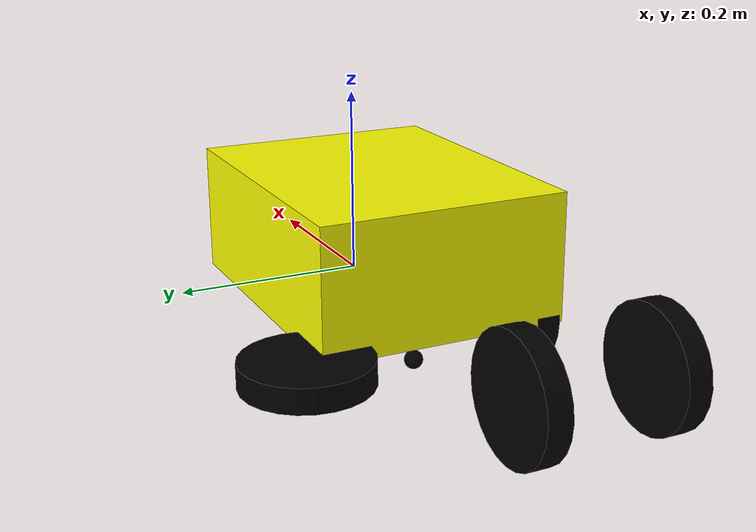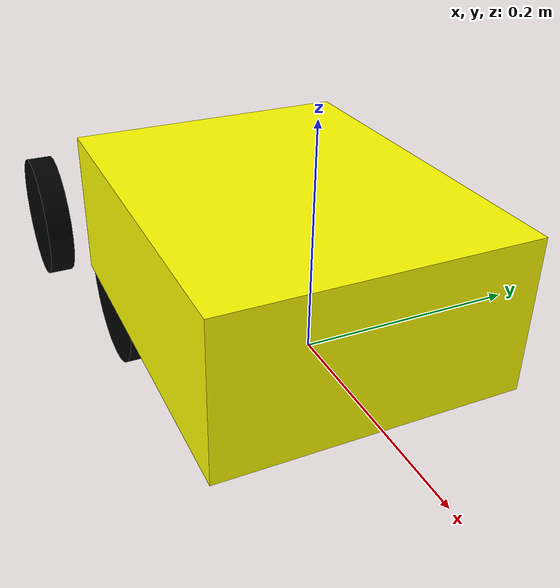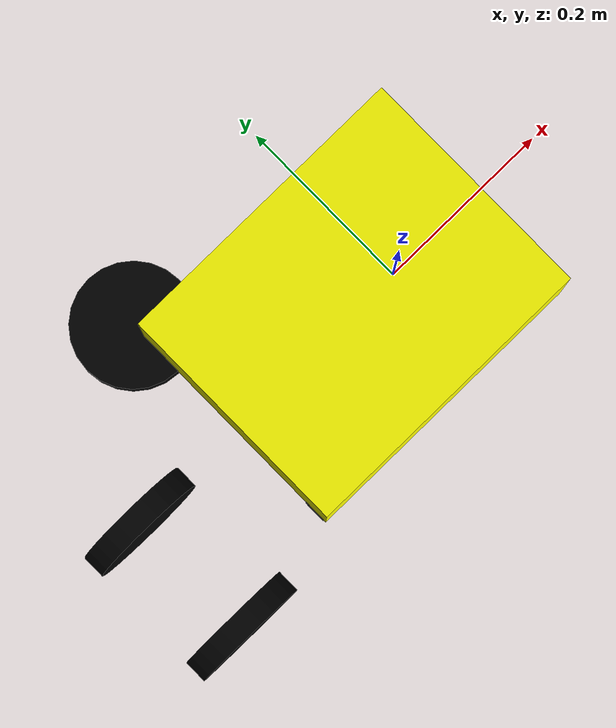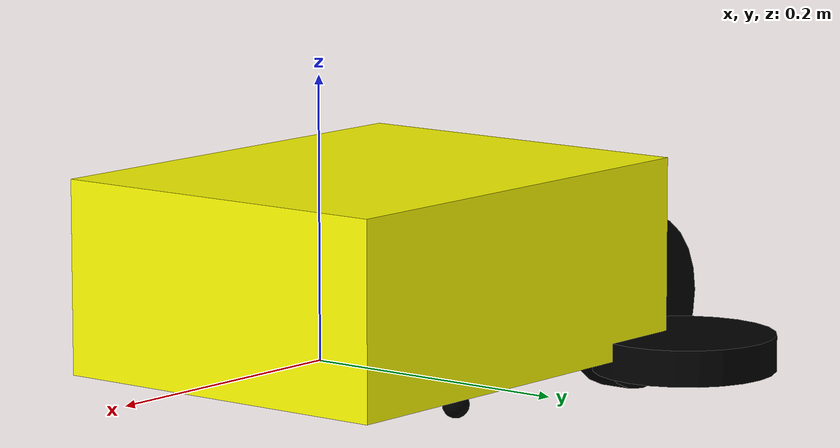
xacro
<?xml version="1.0"?>
<robot xmlns:xacro="http://www.ros.org/wiki/xacro">

    <xacro:include filename="inertial_macros.xacro"/>

    <xacro:property name="HULL_length" value="0.335"/>
    <xacro:property name="HULL_width" value="0.265"/>
    <xacro:property name="HULL_height" value="0.138"/>
    <xacro:property name="HULL_mass" value="1.0"/>
    <xacro:property name="wheel_radius" value="0.066"/>
    <xacro:property name="wheel_thickness" value="0.026"/>
    <xacro:property name="wheel_mass" value="0.05"/>
    <xacro:property name="wheel_offset_x" value="0.226"/>
    <xacro:property name="wheel_offset_y" value="0.1485"/>
    <xacro:property name="wheel_offset_z" value="0.01"/>
    <xacro:property name="caster_wheel_radius" value="0.01"/>
    <xacro:property name="caster_wheel_mass" value="0.01"/>
    <xacro:property name="caster_wheel_offset_x" value="0.075"/>
    <xacro:property name="caster_wheel_offset_z" value="${wheel_offset_z - wheel_radius + caster_wheel_radius}"/>

    <material name="yellow">
        <color rgba="1 1 0 1" />
    </material>

    <material name="black">
        <color rgba="0 0 0 1"/>
    </material>

    <!-- BASE LINK -->

    <link name="base_link">

    </link>

    <!-- BASE_FOOTPRINT LINK -->

    <joint name="base_footprint_joint" type="fixed">
        <parent link="base_link"/>
        <child link="base_footprint"/>
        <origin xyz="0 0 0" rpy="0 0 0"/>
    </joint>

    <link name="base_footprint">
    </link>

    <!-- HULL LINK -->

    <joint name="HULL_joint" type="fixed">
        <parent link="base_link"/>
        <child link="HULL"/>
        <origin xyz="${-wheel_offset_x} 0 ${-wheel_offset_z}"/>
    </joint>

    <link name="HULL">
        <visual>
            <origin xyz="${HULL_length/2} 0 ${HULL_height/2}"/>
            <geometry>
                <box size="${HULL_length} ${HULL_width} ${HULL_height}"/>
            </geometry>
            <material name="yellow"/>
        </visual>
        <collision>
            <origin xyz="${HULL_length/2} 0 ${HULL_height/2}"/>
            <geometry>
                <box size="${HULL_length} ${HULL_width} ${HULL_height}"/>
            </geometry>
        </collision>
        <xacro:inertial_box mass="0.5" x="${HULL_length}" y="${HULL_width}" z="${HULL_height}">
            <origin xyz="${HULL_length/2} 0 ${HULL_height/2}" rpy="0 0 0"/>
        </xacro:inertial_box>
    </link>

    <gazebo reference="HULL">
        <material>Gazebo/Yellow</material>
    </gazebo>

    <!-- LEFT WHEEL LINK -->

    <joint name="left_wheel_joint" type="continuous">
        <parent link="HULL"/>
        <child link="left_wheel"/>
        <origin xyz="0 ${wheel_offset_y} 0" rpy="0 0 0" />
        <axis xyz="0 0 1"/>
    </joint>

    <link name="left_wheel">
        <visual>
            <geometry>
                <cylinder radius="${wheel_radius}" length="${wheel_thickness}"/>
            </geometry>
            <material name="black"/>
        </visual>
        <collision>
            <geometry>
                <sphere radius="${wheel_radius}"/>
            </geometry>
        </collision>
        <xacro:inertial_cylinder mass="${wheel_mass}" length="${wheel_thickness}" radius="${wheel_radius}">
            <origin xyz="0 0 0" rpy="0 0 0"/>
        </xacro:inertial_cylinder>
    </link>

    <gazebo reference="left_wheel">
        <material>Gazebo/Black</material>
    </gazebo>

    <!-- LEFT BACK WHEEL LINK -->

    <joint name="left_back_wheel_joint" type="fixed">
        <parent link="HULL"/>
        <child link="left_back_wheel"/>
        <origin xyz="${-HULL_length + 0.2} 0 0" rpy="-${pi/2} 0 0" />
        <axis xyz="0 0 1"/>
    </joint>

    <link name="left_back_wheel">
        <visual>
            <geometry>
                <cylinder radius="${wheel_radius}" length="${wheel_thickness}"/>
            </geometry>
            <material name="black"/>
        </visual>
        <collision>
            <geometry>
                <sphere radius="${wheel_radius}"/>
            </geometry>
        </collision>
        <xacro:inertial_cylinder mass="${wheel_mass}" length="${wheel_thickness}" radius="${wheel_radius}">
            <origin xyz="0 0 0" rpy="0 0 0"/>
        </xacro:inertial_cylinder>
    </link>

    <gazebo reference="left_back_wheel">
        <material>Gazebo/Black</material>
    </gazebo>

    <!-- RIGHT WHEEL LINK -->

    <joint name="right_wheel_joint" type="fixed">
        <parent link="HULL"/>
        <child link="right_wheel"/>
        <origin xyz="${-HULL_length + 0.4} ${wheel_offset_y-HULL_width} 0" rpy="${pi/2} 0 0" />
        <axis xyz="0 0 1"/>
    </joint>

    <link name="right_wheel">
        <visual>
            <geometry>
                <cylinder radius="${wheel_radius}" length="${wheel_thickness}"/>
            </geometry>
            <material name="black"/>
        </visual>
        <collision>
            <geometry>
                <sphere radius="${wheel_radius}"/>
            </geometry>
        </collision>
        <xacro:inertial_cylinder mass="${wheel_mass}" length="${wheel_thickness}" radius="${wheel_radius}">
            <origin xyz="0 0 0" rpy="0 0 0"/>
        </xacro:inertial_cylinder>
    </link>

    <gazebo reference="right_wheel">
        <material>Gazebo/Black</material>
    </gazebo>

    <!-- RIGHT BACK WHEEL LINK -->

    <joint name="right_back_wheel_joint" type="continuous">
        <parent link="HULL"/>
        <child link="right_back_wheel"/>
        <origin xyz="${-HULL_length + 0.2} ${-wheel_offset_y} 0" rpy="${pi/2} 0 0" />
        <axis xyz="0 0 -1"/>
    </joint>

    <link name="right_back_wheel">
        <visual>
            <geometry>
                <cylinder radius="${wheel_radius}" length="${wheel_thickness}"/>
            </geometry>
            <material name="black"/>
        </visual>
        <collision>
            <geometry>
                <sphere radius="${wheel_radius}"/>
            </geometry>
        </collision>
        <xacro:inertial_cylinder mass="${wheel_mass}" length="${wheel_thickness}" radius="${wheel_radius}">
            <origin xyz="0 0 0" rpy="0 0 0"/>
        </xacro:inertial_cylinder>
    </link>

    <gazebo reference="right_back_wheel">
        <material>Gazebo/Black</material>
    </gazebo>

    <!-- CASTER WHEEL LINK -->

    <joint name="caster_wheel_joint" type="fixed">
        <parent link="HULL"/>
        <child link="caster_wheel"/>
        <origin xyz="${caster_wheel_offset_x} 0 ${caster_wheel_offset_z}"/>
    </joint>

    <link name="caster_wheel">
        <visual>
            <geometry>
                <sphere radius="${caster_wheel_radius}"/>
            </geometry>
            <material name="black"/>
        </visual>
        <collision>
            <geometry>
                <sphere radius="${caster_wheel_radius}"/>
            </geometry>
        </collision>
        <xacro:inertial_sphere mass="${caster_wheel_mass}" radius="${caster_wheel_radius}">
            <origin xyz="0 0 0" rpy="0 0 0"/>
        </xacro:inertial_sphere>
    </link>

    <gazebo reference="caster_wheel">
        <material>Gazebo/Black</material>
        <mu1 value="0.001"/>
        <mu2 value="0.001"/>
    </gazebo>

</robot>
